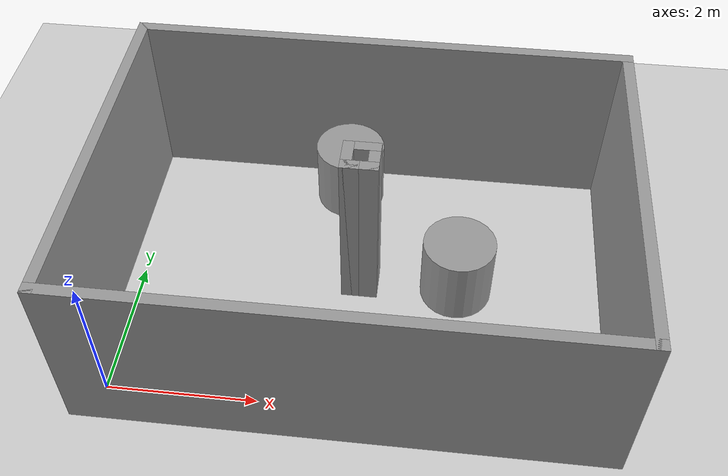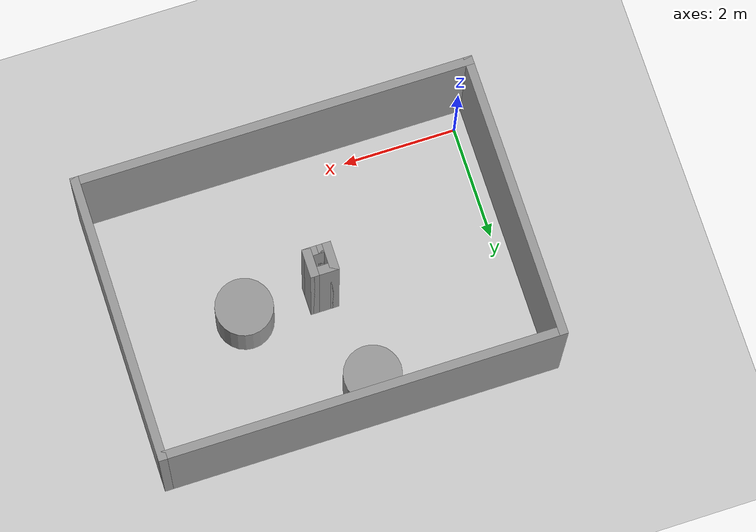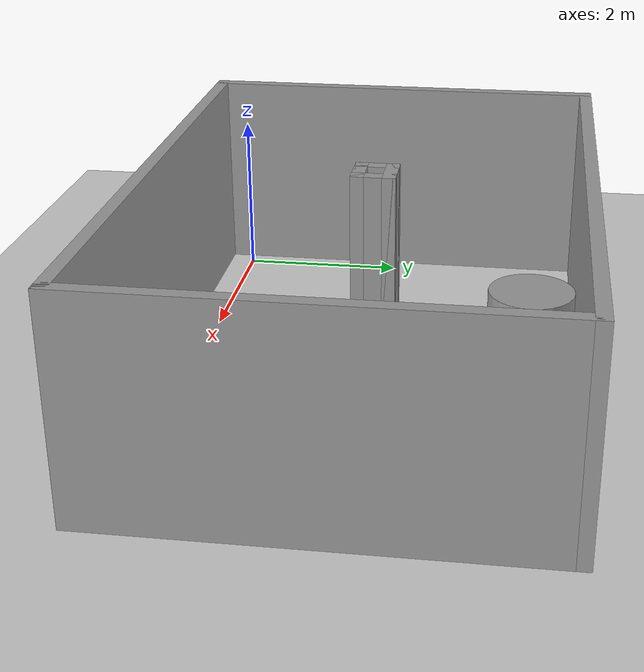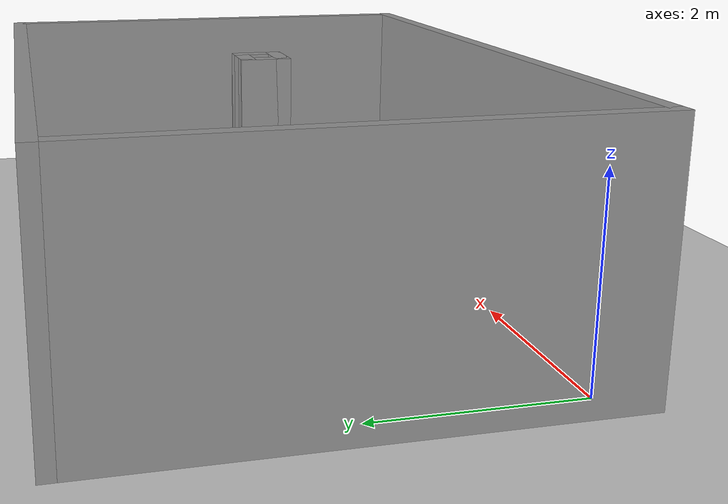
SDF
<sdf version="1.6">
 <world name="default">
  <light name="sun" type="directional">
   <pose>0 0 10 0 -0 0</pose>
   <diffuse>0.8 0.8 0.8 1</diffuse>
   <specular>0.2 0.2 0.2 1</specular>
   <attenuation>
    <range>1000</range>
    <constant>0.9</constant>
    <linear>0.01</linear>
    <quadratic>0.001</quadratic>
   </attenuation>
   <direction>-0.5 0.1 -0.9</direction>
  </light>
  <model name="ground_plane">
   <static>1</static>
   <link name="link">
    <collision name="collision">
     <geometry><plane><normal>0 0 1</normal><size>100 100</size></plane></geometry>
     <surface>
      <contact><collide_bitmask>65535</collide_bitmask></contact>
      <friction><ode><mu>100</mu><mu2>50</mu2></ode></friction>
     </surface>
    </collision>
    <visual name="visual">
     <cast_shadows>0</cast_shadows>
     <geometry><plane><normal>0 0 1</normal><size>100 100</size></plane></geometry>
     <material>
      <script><uri>file://media/materials/scripts/gazebo.material</uri><name>Gazebo/Grey</name></script>
     </material>
    </visual>
   </link>
  </model>
  <gravity>0 0 -9.8</gravity>
  <magnetic_field>6e-06 2.3e-05 -4.2e-05</magnetic_field>
  <atmosphere type="adiabatic"/>
  <physics name="default_physics" default="0" type="ode">
   <max_step_size>0.001</max_step_size>
   <real_time_factor>1</real_time_factor>
   <real_time_update_rate>1000</real_time_update_rate>
  </physics>
  <scene><ambient>0.4 0.4 0.4 1</ambient><background>0.7 0.7 0.7 1</background><shadows>1</shadows></scene>
  <audio><device>default</device></audio>
  <spherical_coordinates>
   <surface_model>EARTH_WGS84</surface_model>
   <latitude_deg>0</latitude_deg>
   <longitude_deg>0</longitude_deg>
   <elevation>0</elevation>
   <heading_deg>0</heading_deg>
  </spherical_coordinates>
  <model name="Arena">
   <link name="Wall_38">
    <pose>0.212613 2.64146 0 0 -0 3.14159</pose>
    <visual name="Wall_38_Visual">
     <pose>0 0 1.25 0 -0 0</pose>
     <geometry><box><size>7 0.15 2.5</size></box></geometry>
     <material>
      <script><uri>file://media/materials/scripts/gazebo.material</uri><name>Gazebo/Grey</name></script>
      <ambient>1 1 1 1</ambient>
     </material>
     <meta><layer>0</layer></meta>
    </visual>
    <collision name="Wall_38_Collision">
     <pose>0 0 1.25 0 -0 0</pose>
     <geometry><box><size>7 0.15 2.5</size></box></geometry>
     <surface>
      <friction>
       <ode><mu>1</mu><mu2>1</mu2><fdir1>0 0 0</fdir1><slip1>0</slip1><slip2>0</slip2></ode>
       <torsional>
        <coefficient>1</coefficient>
        <patch_radius>0</patch_radius>
        <surface_radius>0</surface_radius>
        <use_patch_radius>1</use_patch_radius>
        <ode><slip>0</slip></ode>
       </torsional>
      </friction>
      <bounce><restitution_coefficient>0</restitution_coefficient><threshold>1e+06</threshold></bounce>
      <contact>
       <collide_without_contact>0</collide_without_contact>
       <collide_without_contact_bitmask>1</collide_without_contact_bitmask>
       <collide_bitmask>1</collide_bitmask>
       <ode>
        <soft_cfm>0</soft_cfm>
        <soft_erp>0.2</soft_erp>
        <kp>1e+13</kp>
        <kd>1</kd>
        <max_vel>0.01</max_vel>
        <min_depth>0</min_depth>
       </ode>
       <bullet>
        <split_impulse>1</split_impulse>
        <split_impulse_penetration_threshold>-0.01</split_impulse_penetration_threshold>
        <soft_cfm>0</soft_cfm>
        <soft_erp>0.2</soft_erp>
        <kp>1e+13</kp>
        <kd>1</kd>
       </bullet>
      </contact>
     </surface>
    </collision>
   </link>
   <link name="Wall_39">
    <pose>-3.21239 0.216461 0 0 0 -1.5708</pose>
    <visual name="Wall_39_Visual">
     <pose>0 0 1.25 0 -0 0</pose>
     <geometry><box><size>5 0.15 2.5</size></box></geometry>
     <material>
      <script><uri>file://media/materials/scripts/gazebo.material</uri><name>Gazebo/Grey</name></script>
      <ambient>1 1 1 1</ambient>
     </material>
     <meta><layer>0</layer></meta>
    </visual>
    <collision name="Wall_39_Collision">
     <pose>0 0 1.25 0 -0 0</pose>
     <geometry><box><size>5 0.15 2.5</size></box></geometry>
     <surface>
      <friction>
       <ode><mu>1</mu><mu2>1</mu2><fdir1>0 0 0</fdir1><slip1>0</slip1><slip2>0</slip2></ode>
       <torsional>
        <coefficient>1</coefficient>
        <patch_radius>0</patch_radius>
        <surface_radius>0</surface_radius>
        <use_patch_radius>1</use_patch_radius>
        <ode><slip>0</slip></ode>
       </torsional>
      </friction>
      <bounce><restitution_coefficient>0</restitution_coefficient><threshold>1e+06</threshold></bounce>
      <contact>
       <collide_without_contact>0</collide_without_contact>
       <collide_without_contact_bitmask>1</collide_without_contact_bitmask>
       <collide_bitmask>1</collide_bitmask>
       <ode>
        <soft_cfm>0</soft_cfm>
        <soft_erp>0.2</soft_erp>
        <kp>1e+13</kp>
        <kd>1</kd>
        <max_vel>0.01</max_vel>
        <min_depth>0</min_depth>
       </ode>
       <bullet>
        <split_impulse>1</split_impulse>
        <split_impulse_penetration_threshold>-0.01</split_impulse_penetration_threshold>
        <soft_cfm>0</soft_cfm>
        <soft_erp>0.2</soft_erp>
        <kp>1e+13</kp>
        <kd>1</kd>
       </bullet>
      </contact>
     </surface>
    </collision>
   </link>
   <link name="Wall_40">
    <pose>0.212613 -2.20854 0 0 -0 0</pose>
    <visual name="Wall_40_Visual">
     <pose>0 0 1.25 0 -0 0</pose>
     <geometry><box><size>7 0.15 2.5</size></box></geometry>
     <material>
      <script><uri>file://media/materials/scripts/gazebo.material</uri><name>Gazebo/Grey</name></script>
      <ambient>1 1 1 1</ambient>
     </material>
     <meta><layer>0</layer></meta>
    </visual>
    <collision name="Wall_40_Collision">
     <pose>0 0 1.25 0 -0 0</pose>
     <geometry><box><size>7 0.15 2.5</size></box></geometry>
     <surface>
      <friction>
       <ode><mu>1</mu><mu2>1</mu2><fdir1>0 0 0</fdir1><slip1>0</slip1><slip2>0</slip2></ode>
       <torsional>
        <coefficient>1</coefficient>
        <patch_radius>0</patch_radius>
        <surface_radius>0</surface_radius>
        <use_patch_radius>1</use_patch_radius>
        <ode><slip>0</slip></ode>
       </torsional>
      </friction>
      <bounce><restitution_coefficient>0</restitution_coefficient><threshold>1e+06</threshold></bounce>
      <contact>
       <collide_without_contact>0</collide_without_contact>
       <collide_without_contact_bitmask>1</collide_without_contact_bitmask>
       <collide_bitmask>1</collide_bitmask>
       <ode>
        <soft_cfm>0</soft_cfm>
        <soft_erp>0.2</soft_erp>
        <kp>1e+13</kp>
        <kd>1</kd>
        <max_vel>0.01</max_vel>
        <min_depth>0</min_depth>
       </ode>
       <bullet>
        <split_impulse>1</split_impulse>
        <split_impulse_penetration_threshold>-0.01</split_impulse_penetration_threshold>
        <soft_cfm>0</soft_cfm>
        <soft_erp>0.2</soft_erp>
        <kp>1e+13</kp>
        <kd>1</kd>
       </bullet>
      </contact>
     </surface>
    </collision>
   </link>
   <link name="Wall_41">
    <pose>3.63761 0.216461 0 0 -0 1.5708</pose>
    <visual name="Wall_41_Visual">
     <pose>0 0 1.25 0 -0 0</pose>
     <geometry><box><size>5 0.15 2.5</size></box></geometry>
     <material>
      <script><uri>file://media/materials/scripts/gazebo.material</uri><name>Gazebo/Grey</name></script>
      <ambient>1 1 1 1</ambient>
     </material>
     <meta><layer>0</layer></meta>
    </visual>
    <collision name="Wall_41_Collision">
     <pose>0 0 1.25 0 -0 0</pose>
     <geometry><box><size>5 0.15 2.5</size></box></geometry>
     <surface>
      <friction>
       <ode><mu>1</mu><mu2>1</mu2><fdir1>0 0 0</fdir1><slip1>0</slip1><slip2>0</slip2></ode>
       <torsional>
        <coefficient>1</coefficient>
        <patch_radius>0</patch_radius>
        <surface_radius>0</surface_radius>
        <use_patch_radius>1</use_patch_radius>
        <ode><slip>0</slip></ode>
       </torsional>
      </friction>
      <bounce><restitution_coefficient>0</restitution_coefficient><threshold>1e+06</threshold></bounce>
      <contact>
       <collide_without_contact>0</collide_without_contact>
       <collide_without_contact_bitmask>1</collide_without_contact_bitmask>
       <collide_bitmask>1</collide_bitmask>
       <ode>
        <soft_cfm>0</soft_cfm>
        <soft_erp>0.2</soft_erp>
        <kp>1e+13</kp>
        <kd>1</kd>
        <max_vel>0.01</max_vel>
        <min_depth>0</min_depth>
       </ode>
       <bullet>
        <split_impulse>1</split_impulse>
        <split_impulse_penetration_threshold>-0.01</split_impulse_penetration_threshold>
        <soft_cfm>0</soft_cfm>
        <soft_erp>0.2</soft_erp>
        <kp>1e+13</kp>
        <kd>1</kd>
       </bullet>
      </contact>
     </surface>
    </collision>
   </link>
   <link name="Wall_55">
    <pose>0.062882 0.122971 0 0 -0 3.14159</pose>
    <visual name="Wall_55_Visual">
     <pose>0 0 1.25 0 -0 0</pose>
     <geometry><box><size>0.25 0.15 2.5</size></box></geometry>
     <material>
      <script><uri>file://media/materials/scripts/gazebo.material</uri><name>Gazebo/Grey</name></script>
      <ambient>1 1 1 1</ambient>
     </material>
     <meta><layer>0</layer></meta>
    </visual>
    <collision name="Wall_55_Collision">
     <pose>0 0 1.25 0 -0 0</pose>
     <geometry><box><size>0.25 0.15 2.5</size></box></geometry>
     <surface>
      <friction>
       <ode><mu>1</mu><mu2>1</mu2><fdir1>0 0 0</fdir1><slip1>0</slip1><slip2>0</slip2></ode>
       <torsional>
        <coefficient>1</coefficient>
        <patch_radius>0</patch_radius>
        <surface_radius>0</surface_radius>
        <use_patch_radius>1</use_patch_radius>
        <ode><slip>0</slip></ode>
       </torsional>
      </friction>
      <bounce><restitution_coefficient>0</restitution_coefficient><threshold>1e+06</threshold></bounce>
      <contact>
       <collide_without_contact>0</collide_without_contact>
       <collide_without_contact_bitmask>1</collide_without_contact_bitmask>
       <collide_bitmask>1</collide_bitmask>
       <ode>
        <soft_cfm>0</soft_cfm>
        <soft_erp>0.2</soft_erp>
        <kp>1e+13</kp>
        <kd>1</kd>
        <max_vel>0.01</max_vel>
        <min_depth>0</min_depth>
       </ode>
       <bullet>
        <split_impulse>1</split_impulse>
        <split_impulse_penetration_threshold>-0.01</split_impulse_penetration_threshold>
        <soft_cfm>0</soft_cfm>
        <soft_erp>0.2</soft_erp>
        <kp>1e+13</kp>
        <kd>1</kd>
       </bullet>
      </contact>
     </surface>
    </collision>
   </link>
   <link name="Wall_56">
    <pose>0.012882 0.297971 0 0 -0 1.5708</pose>
    <visual name="Wall_56_Visual">
     <pose>0 0 1.25 0 -0 0</pose>
     <geometry><box><size>0.5 0.15 2.5</size></box></geometry>
     <material>
      <script><uri>file://media/materials/scripts/gazebo.material</uri><name>Gazebo/Grey</name></script>
      <ambient>1 1 1 1</ambient>
     </material>
     <meta><layer>0</layer></meta>
    </visual>
    <collision name="Wall_56_Collision">
     <pose>0 0 1.25 0 -0 0</pose>
     <geometry><box><size>0.5 0.15 2.5</size></box></geometry>
     <surface>
      <friction>
       <ode><mu>1</mu><mu2>1</mu2><fdir1>0 0 0</fdir1><slip1>0</slip1><slip2>0</slip2></ode>
       <torsional>
        <coefficient>1</coefficient>
        <patch_radius>0</patch_radius>
        <surface_radius>0</surface_radius>
        <use_patch_radius>1</use_patch_radius>
        <ode><slip>0</slip></ode>
       </torsional>
      </friction>
      <bounce><restitution_coefficient>0</restitution_coefficient><threshold>1e+06</threshold></bounce>
      <contact>
       <collide_without_contact>0</collide_without_contact>
       <collide_without_contact_bitmask>1</collide_without_contact_bitmask>
       <collide_bitmask>1</collide_bitmask>
       <ode>
        <soft_cfm>0</soft_cfm>
        <soft_erp>0.2</soft_erp>
        <kp>1e+13</kp>
        <kd>1</kd>
        <max_vel>0.01</max_vel>
        <min_depth>0</min_depth>
       </ode>
       <bullet>
        <split_impulse>1</split_impulse>
        <split_impulse_penetration_threshold>-0.01</split_impulse_penetration_threshold>
        <soft_cfm>0</soft_cfm>
        <soft_erp>0.2</soft_erp>
        <kp>1e+13</kp>
        <kd>1</kd>
       </bullet>
      </contact>
     </surface>
    </collision>
   </link>
   <link name="Wall_57">
    <pose>0.187882 0.472971 0 0 -0 0</pose>
    <visual name="Wall_57_Visual">
     <pose>0 0 1.25 0 -0 0</pose>
     <geometry><box><size>0.5 0.15 2.5</size></box></geometry>
     <material>
      <script><uri>file://media/materials/scripts/gazebo.material</uri><name>Gazebo/Grey</name></script>
      <ambient>1 1 1 1</ambient>
     </material>
     <meta><layer>0</layer></meta>
    </visual>
    <collision name="Wall_57_Collision">
     <pose>0 0 1.25 0 -0 0</pose>
     <geometry><box><size>0.5 0.15 2.5</size></box></geometry>
     <surface>
      <friction>
       <ode><mu>1</mu><mu2>1</mu2><fdir1>0 0 0</fdir1><slip1>0</slip1><slip2>0</slip2></ode>
       <torsional>
        <coefficient>1</coefficient>
        <patch_radius>0</patch_radius>
        <surface_radius>0</surface_radius>
        <use_patch_radius>1</use_patch_radius>
        <ode><slip>0</slip></ode>
       </torsional>
      </friction>
      <bounce><restitution_coefficient>0</restitution_coefficient><threshold>1e+06</threshold></bounce>
      <contact>
       <collide_without_contact>0</collide_without_contact>
       <collide_without_contact_bitmask>1</collide_without_contact_bitmask>
       <collide_bitmask>1</collide_bitmask>
       <ode>
        <soft_cfm>0</soft_cfm>
        <soft_erp>0.2</soft_erp>
        <kp>1e+13</kp>
        <kd>1</kd>
        <max_vel>0.01</max_vel>
        <min_depth>0</min_depth>
       </ode>
       <bullet>
        <split_impulse>1</split_impulse>
        <split_impulse_penetration_threshold>-0.01</split_impulse_penetration_threshold>
        <soft_cfm>0</soft_cfm>
        <soft_erp>0.2</soft_erp>
        <kp>1e+13</kp>
        <kd>1</kd>
       </bullet>
      </contact>
     </surface>
    </collision>
   </link>
   <link name="Wall_58">
    <pose>0.362882 0.297971 0 0 0 -1.5708</pose>
    <visual name="Wall_58_Visual">
     <pose>0 0 1.25 0 -0 0</pose>
     <geometry><box><size>0.5 0.15 2.5</size></box></geometry>
     <material>
      <script><uri>file://media/materials/scripts/gazebo.material</uri><name>Gazebo/Grey</name></script>
      <ambient>1 1 1 1</ambient>
     </material>
     <meta><layer>0</layer></meta>
    </visual>
    <collision name="Wall_58_Collision">
     <pose>0 0 1.25 0 -0 0</pose>
     <geometry><box><size>0.5 0.15 2.5</size></box></geometry>
     <surface>
      <friction>
       <ode><mu>1</mu><mu2>1</mu2><fdir1>0 0 0</fdir1><slip1>0</slip1><slip2>0</slip2></ode>
       <torsional>
        <coefficient>1</coefficient>
        <patch_radius>0</patch_radius>
        <surface_radius>0</surface_radius>
        <use_patch_radius>1</use_patch_radius>
        <ode><slip>0</slip></ode>
       </torsional>
      </friction>
      <bounce><restitution_coefficient>0</restitution_coefficient><threshold>1e+06</threshold></bounce>
      <contact>
       <collide_without_contact>0</collide_without_contact>
       <collide_without_contact_bitmask>1</collide_without_contact_bitmask>
       <collide_bitmask>1</collide_bitmask>
       <ode>
        <soft_cfm>0</soft_cfm>
        <soft_erp>0.2</soft_erp>
        <kp>1e+13</kp>
        <kd>1</kd>
        <max_vel>0.01</max_vel>
        <min_depth>0</min_depth>
       </ode>
       <bullet>
        <split_impulse>1</split_impulse>
        <split_impulse_penetration_threshold>-0.01</split_impulse_penetration_threshold>
        <soft_cfm>0</soft_cfm>
        <soft_erp>0.2</soft_erp>
        <kp>1e+13</kp>
        <kd>1</kd>
       </bullet>
      </contact>
     </surface>
    </collision>
   </link>
   <link name="Wall_59">
    <pose>0.187882 0.122971 0 0 -0 3.14159</pose>
    <visual name="Wall_59_Visual">
     <pose>0 0 1.25 0 -0 0</pose>
     <geometry><box><size>0.5 0.15 2.5</size></box></geometry>
     <material>
      <script><uri>file://media/materials/scripts/gazebo.material</uri><name>Gazebo/Grey</name></script>
      <ambient>1 1 1 1</ambient>
     </material>
     <meta><layer>0</layer></meta>
    </visual>
    <collision name="Wall_59_Collision">
     <pose>0 0 1.25 0 -0 0</pose>
     <geometry><box><size>0.5 0.15 2.5</size></box></geometry>
     <surface>
      <friction>
       <ode><mu>1</mu><mu2>1</mu2><fdir1>0 0 0</fdir1><slip1>0</slip1><slip2>0</slip2></ode>
       <torsional>
        <coefficient>1</coefficient>
        <patch_radius>0</patch_radius>
        <surface_radius>0</surface_radius>
        <use_patch_radius>1</use_patch_radius>
        <ode><slip>0</slip></ode>
       </torsional>
      </friction>
      <bounce><restitution_coefficient>0</restitution_coefficient><threshold>1e+06</threshold></bounce>
      <contact>
       <collide_without_contact>0</collide_without_contact>
       <collide_without_contact_bitmask>1</collide_without_contact_bitmask>
       <collide_bitmask>1</collide_bitmask>
       <ode>
        <soft_cfm>0</soft_cfm>
        <soft_erp>0.2</soft_erp>
        <kp>1e+13</kp>
        <kd>1</kd>
        <max_vel>0.01</max_vel>
        <min_depth>0</min_depth>
       </ode>
       <bullet>
        <split_impulse>1</split_impulse>
        <split_impulse_penetration_threshold>-0.01</split_impulse_penetration_threshold>
        <soft_cfm>0</soft_cfm>
        <soft_erp>0.2</soft_erp>
        <kp>1e+13</kp>
        <kd>1</kd>
       </bullet>
      </contact>
     </surface>
    </collision>
   </link>
   <static>1</static>
   <pose>2.92522 1.82891 0 0 -0 0</pose>
  </model>
  <model name="unit_cylinder">
   <pose>2.76182 3.89536 0.499992 -3e-06 -4e-06 -0</pose>
   <link name="link">
    <inertial>
     <mass>1</mass>
     <inertia><ixx>0.145833</ixx><ixy>0</ixy><ixz>0</ixz><iyy>0.145833</iyy><iyz>0</iyz><izz>0.125</izz></inertia>
    </inertial>
    <collision name="collision">
     <geometry><cylinder><radius>0.5</radius><length>1</length></cylinder></geometry>
    </collision>
    <visual name="visual">
     <geometry><cylinder><radius>0.5</radius><length>1</length></cylinder></geometry>
     <material>
      <script><name>Gazebo/Grey</name><uri>file://media/materials/scripts/gazebo.material</uri></script>
     </material>
    </visual>
   </link>
  </model>
  <model name="unit_cylinder_0">
   <pose>4.46232 2.13851 0.499997 3e-06 4e-06 -0</pose>
   <link name="link">
    <inertial>
     <mass>1</mass>
     <inertia><ixx>0.145833</ixx><ixy>0</ixy><ixz>0</ixz><iyy>0.145833</iyy><iyz>0</iyz><izz>0.125</izz></inertia>
    </inertial>
    <collision name="collision">
     <geometry><cylinder><radius>0.5</radius><length>1</length></cylinder></geometry>
    </collision>
    <visual name="visual">
     <geometry><cylinder><radius>0.5</radius><length>1</length></cylinder></geometry>
     <material>
      <script><name>Gazebo/Grey</name><uri>file://media/materials/scripts/gazebo.material</uri></script>
     </material>
    </visual>
   </link>
  </model>
 </world>
</sdf>
